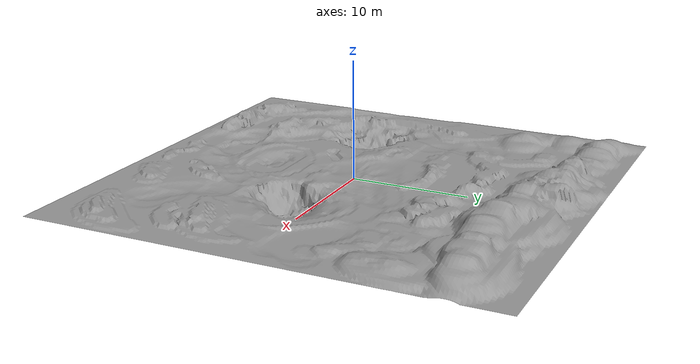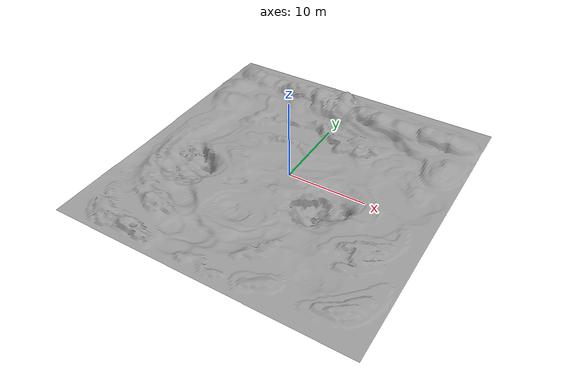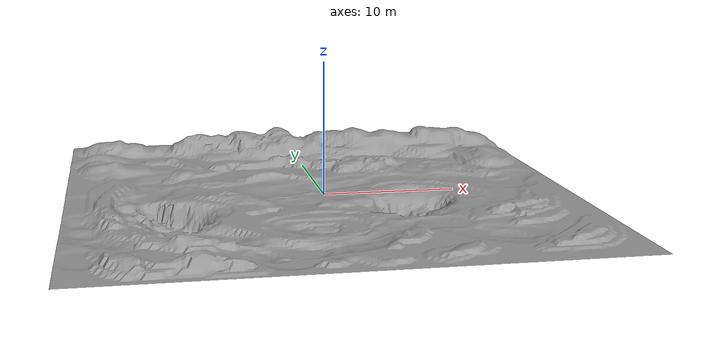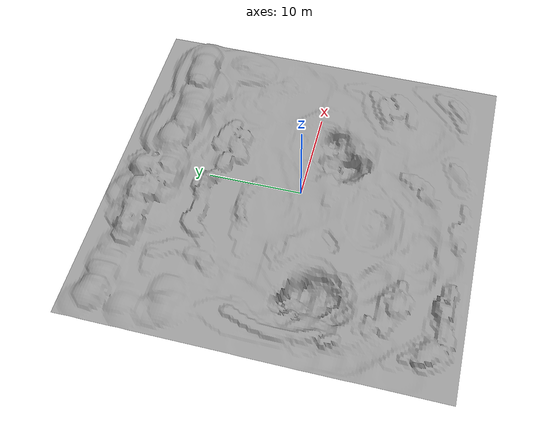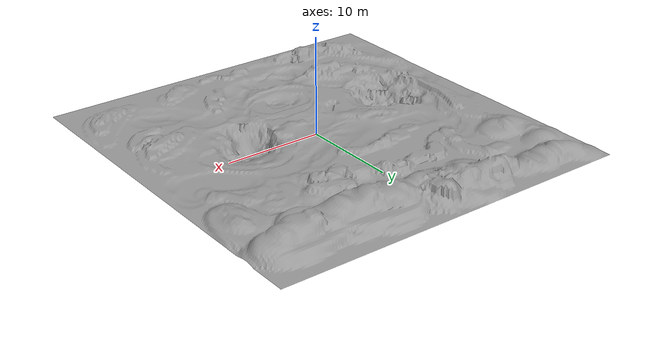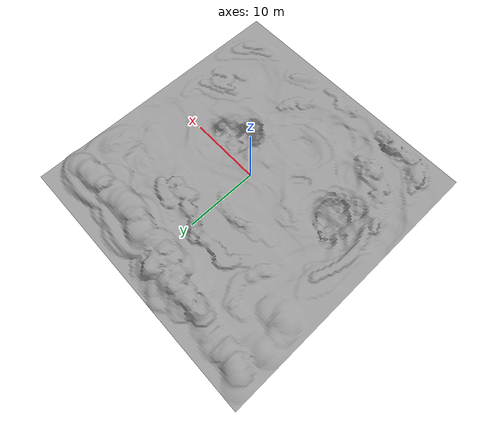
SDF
<?xml version="1.0" ?>
<sdf version="1.4">
        <model name="rough_terrain">
		<static>true</static>
		<link name="link">
			<pose>0 0 0 1.57 0 0</pose>
			<collision name="collision">
				<geometry>
					<mesh>
                                                <uri>model://rough_terrain/mesh/terrain.dae</uri>
						<scale>0.5 0.25 0.5</scale>
					</mesh>
				</geometry>
			</collision>
			<visual name="visual">
				<geometry>
					<mesh>
                                                <uri>model://rough_terrain/mesh/terrain.dae</uri>
						<scale>0.5 0.25 0.5</scale>
					</mesh>
				</geometry>
			</visual>
		</link>
	</model>
</sdf>
